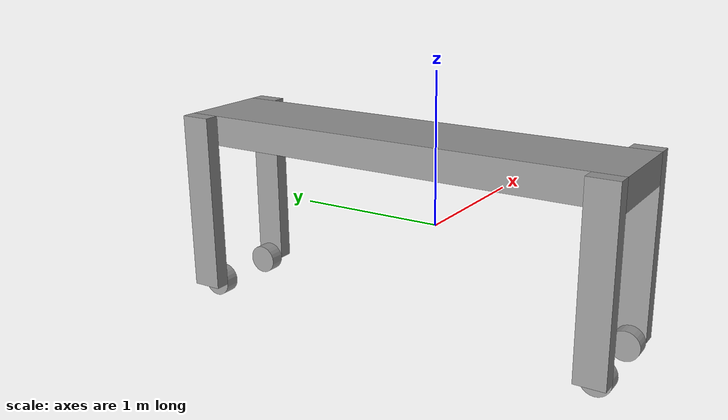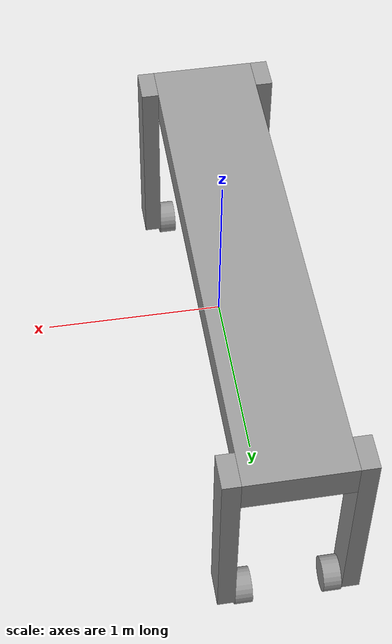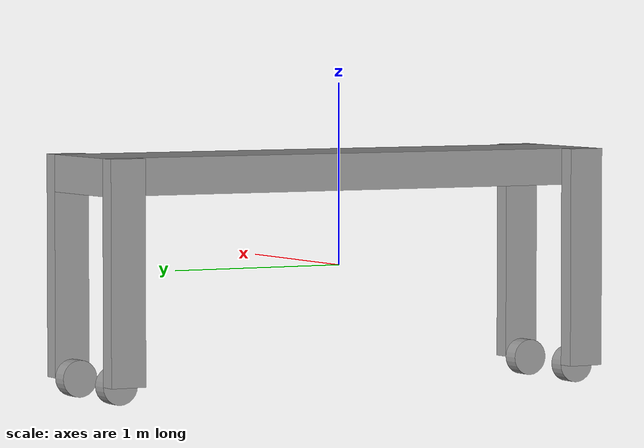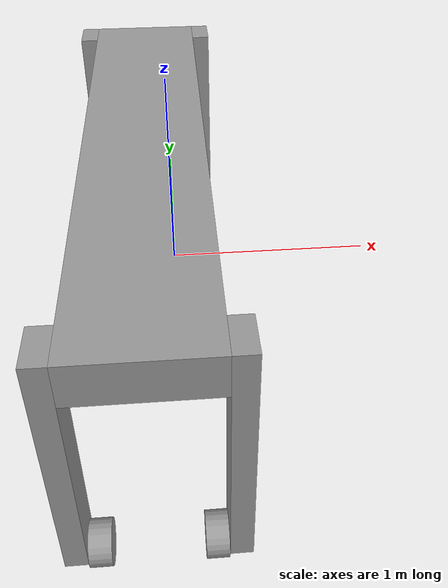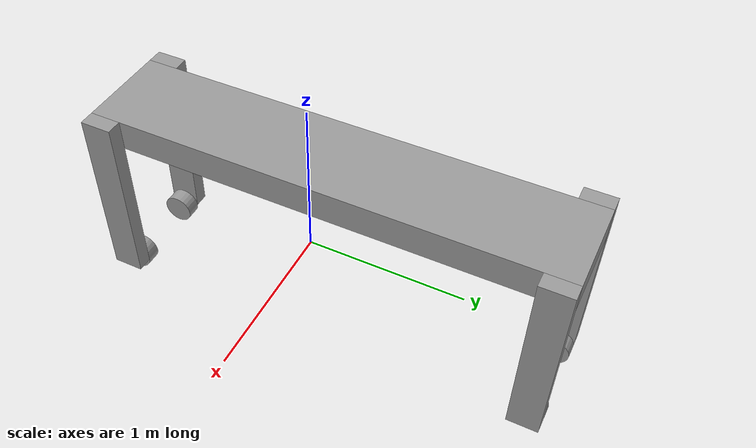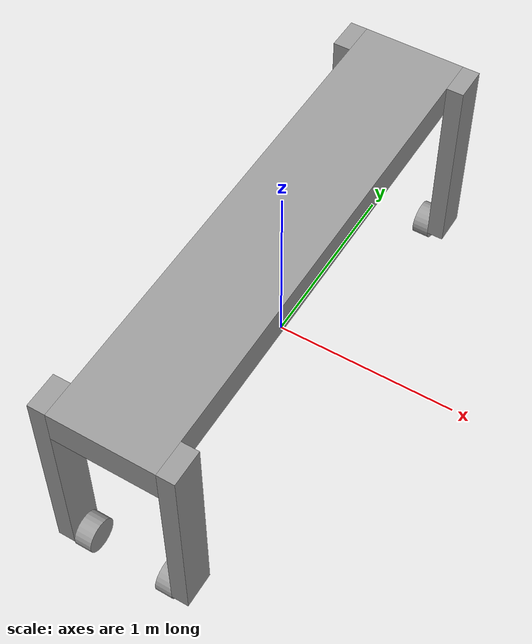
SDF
<?xml version='1.0'?>
<sdf version='1.7'>
  <model name='trolley'>
    <link name='link_0'>
      <inertial>
        <mass>1</mass>
        <inertia>
          <ixx>0.166667</ixx>
          <ixy>0</ixy>
          <ixz>0</ixz>
          <iyy>0.166667</iyy>
          <iyz>0</iyz>
          <izz>0.166667</izz>
        </inertia>
        <pose>0 0 0 0 -0 0</pose>
      </inertial>
      <pose>-0.120868 0.130124 0.533333 0 -0 0</pose>
      <gravity>1</gravity>
      <self_collide>0</self_collide>
      <kinematic>0</kinematic>
      <enable_wind>0</enable_wind>
      <visual name='visual'>
        <pose>0 0 0 0 -0 0</pose>
        <geometry>
          <box>
            <size>0.6 3 0.2</size>
          </box>
        </geometry>
        <material>
          <lighting>1</lighting>
          <script>
            <uri>file://media/materials/scripts/gazebo.material</uri>
            <name>Gazebo/Grey</name>
          </script>
          <shader type='pixel'>
            <normal_map>__default__</normal_map>
          </shader>
          <ambient>0.3 0.3 0.3 1</ambient>
          <diffuse>0.7 0.7 0.7 1</diffuse>
          <specular>0.01 0.01 0.01 1</specular>
          <emissive>0 0 0 1</emissive>
        </material>
        <transparency>0</transparency>
        <cast_shadows>1</cast_shadows>
      </visual>
      <collision name='collision'>
        <laser_retro>0</laser_retro>
        <max_contacts>10</max_contacts>
        <pose>0 0 0 0 -0 0</pose>
        <geometry>
          <box>
            <size>0.6 3 0.2</size>
          </box>
        </geometry>
        <surface>
          <friction>
            <ode>
              <mu>1</mu>
              <mu2>1</mu2>
              <fdir1>0 0 0</fdir1>
              <slip1>0</slip1>
              <slip2>0</slip2>
            </ode>
            <torsional>
              <coefficient>1</coefficient>
              <patch_radius>0</patch_radius>
              <surface_radius>0</surface_radius>
              <use_patch_radius>1</use_patch_radius>
              <ode>
                <slip>0</slip>
              </ode>
            </torsional>
          </friction>
          <bounce>
            <restitution_coefficient>0</restitution_coefficient>
            <threshold>1e+06</threshold>
          </bounce>
          <contact>
            <collide_without_contact>0</collide_without_contact>
            <collide_without_contact_bitmask>1</collide_without_contact_bitmask>
            <collide_bitmask>1</collide_bitmask>
            <ode>
              <soft_cfm>0</soft_cfm>
              <soft_erp>0.2</soft_erp>
              <kp>1e+13</kp>
              <kd>1</kd>
              <max_vel>0.01</max_vel>
              <min_depth>0</min_depth>
            </ode>
            <bullet>
              <split_impulse>1</split_impulse>
              <split_impulse_penetration_threshold>-0.01</split_impulse_penetration_threshold>
              <soft_cfm>0</soft_cfm>
              <soft_erp>0.2</soft_erp>
              <kp>1e+13</kp>
              <kd>1</kd>
            </bullet>
          </contact>
        </surface>
      </collision>
    </link>
    <link name='link_1'>
      <inertial>
        <mass>1</mass>
        <inertia>
          <ixx>0.166667</ixx>
          <ixy>0</ixy>
          <ixz>0</ixz>
          <iyy>0.166667</iyy>
          <iyz>0</iyz>
          <izz>0.166667</izz>
        </inertia>
        <pose>0 0 0 0 -0 0</pose>
      </inertial>
      <pose>0.229136 -1.26987 0.033333 0 -0 0</pose>
      <gravity>1</gravity>
      <self_collide>0</self_collide>
      <kinematic>0</kinematic>
      <enable_wind>0</enable_wind>
      <visual name='visual'>
        <pose>0 0 0 0 -0 0</pose>
        <geometry>
          <box>
            <size>0.1 0.2 1.2</size>
          </box>
        </geometry>
        <material>
          <lighting>1</lighting>
          <script>
            <uri>file://media/materials/scripts/gazebo.material</uri>
            <name>Gazebo/Grey</name>
          </script>
          <shader type='pixel'>
            <normal_map>__default__</normal_map>
          </shader>
          <ambient>0.3 0.3 0.3 1</ambient>
          <diffuse>0.7 0.7 0.7 1</diffuse>
          <specular>0.01 0.01 0.01 1</specular>
          <emissive>0 0 0 1</emissive>
        </material>
        <transparency>0</transparency>
        <cast_shadows>1</cast_shadows>
      </visual>
      <collision name='collision'>
        <laser_retro>0</laser_retro>
        <max_contacts>10</max_contacts>
        <pose>0 0 0 0 -0 0</pose>
        <geometry>
          <box>
            <size>0.1 0.2 1.2</size>
          </box>
        </geometry>
        <surface>
          <friction>
            <ode>
              <mu>1</mu>
              <mu2>1</mu2>
              <fdir1>0 0 0</fdir1>
              <slip1>0</slip1>
              <slip2>0</slip2>
            </ode>
            <torsional>
              <coefficient>1</coefficient>
              <patch_radius>0</patch_radius>
              <surface_radius>0</surface_radius>
              <use_patch_radius>1</use_patch_radius>
              <ode>
                <slip>0</slip>
              </ode>
            </torsional>
          </friction>
          <bounce>
            <restitution_coefficient>0</restitution_coefficient>
            <threshold>1e+06</threshold>
          </bounce>
          <contact>
            <collide_without_contact>0</collide_without_contact>
            <collide_without_contact_bitmask>1</collide_without_contact_bitmask>
            <collide_bitmask>1</collide_bitmask>
            <ode>
              <soft_cfm>0</soft_cfm>
              <soft_erp>0.2</soft_erp>
              <kp>1e+13</kp>
              <kd>1</kd>
              <max_vel>0.01</max_vel>
              <min_depth>0</min_depth>
            </ode>
            <bullet>
              <split_impulse>1</split_impulse>
              <split_impulse_penetration_threshold>-0.01</split_impulse_penetration_threshold>
              <soft_cfm>0</soft_cfm>
              <soft_erp>0.2</soft_erp>
              <kp>1e+13</kp>
              <kd>1</kd>
            </bullet>
          </contact>
        </surface>
      </collision>
    </link>
    <link name='link_1_clone'>
      <inertial>
        <mass>1</mass>
        <inertia>
          <ixx>0.166667</ixx>
          <ixy>0</ixy>
          <ixz>0</ixz>
          <iyy>0.166667</iyy>
          <iyz>0</iyz>
          <izz>0.166667</izz>
        </inertia>
        <pose>0 0 0 0 -0 0</pose>
      </inertial>
      <pose>-0.470868 1.53012 0.033333 0 -0 0</pose>
      <gravity>1</gravity>
      <self_collide>0</self_collide>
      <kinematic>0</kinematic>
      <enable_wind>0</enable_wind>
      <visual name='visual'>
        <pose>0 0 0 0 -0 0</pose>
        <geometry>
          <box>
            <size>0.1 0.2 1.2</size>
          </box>
        </geometry>
        <material>
          <lighting>1</lighting>
          <script>
            <uri>file://media/materials/scripts/gazebo.material</uri>
            <name>Gazebo/Grey</name>
          </script>
          <shader type='pixel'>
            <normal_map>__default__</normal_map>
          </shader>
          <ambient>0.3 0.3 0.3 1</ambient>
          <diffuse>0.7 0.7 0.7 1</diffuse>
          <specular>0.01 0.01 0.01 1</specular>
          <emissive>0 0 0 1</emissive>
        </material>
        <transparency>0</transparency>
        <cast_shadows>1</cast_shadows>
      </visual>
      <collision name='collision'>
        <laser_retro>0</laser_retro>
        <max_contacts>10</max_contacts>
        <pose>0 0 0 0 -0 0</pose>
        <geometry>
          <box>
            <size>0.1 0.2 1.2</size>
          </box>
        </geometry>
        <surface>
          <friction>
            <ode>
              <mu>1</mu>
              <mu2>1</mu2>
              <fdir1>0 0 0</fdir1>
              <slip1>0</slip1>
              <slip2>0</slip2>
            </ode>
            <torsional>
              <coefficient>1</coefficient>
              <patch_radius>0</patch_radius>
              <surface_radius>0</surface_radius>
              <use_patch_radius>1</use_patch_radius>
              <ode>
                <slip>0</slip>
              </ode>
            </torsional>
          </friction>
          <bounce>
            <restitution_coefficient>0</restitution_coefficient>
            <threshold>1e+06</threshold>
          </bounce>
          <contact>
            <collide_without_contact>0</collide_without_contact>
            <collide_without_contact_bitmask>1</collide_without_contact_bitmask>
            <collide_bitmask>1</collide_bitmask>
            <ode>
              <soft_cfm>0</soft_cfm>
              <soft_erp>0.2</soft_erp>
              <kp>1e+13</kp>
              <kd>1</kd>
              <max_vel>0.01</max_vel>
              <min_depth>0</min_depth>
            </ode>
            <bullet>
              <split_impulse>1</split_impulse>
              <split_impulse_penetration_threshold>-0.01</split_impulse_penetration_threshold>
              <soft_cfm>0</soft_cfm>
              <soft_erp>0.2</soft_erp>
              <kp>1e+13</kp>
              <kd>1</kd>
            </bullet>
          </contact>
        </surface>
      </collision>
    </link>
    <link name='link_1_clone_0'>
      <inertial>
        <mass>1</mass>
        <inertia>
          <ixx>0.166667</ixx>
          <ixy>0</ixy>
          <ixz>0</ixz>
          <iyy>0.166667</iyy>
          <iyz>0</iyz>
          <izz>0.166667</izz>
        </inertia>
        <pose>0 0 0 0 -0 0</pose>
      </inertial>
      <pose>-0.470868 -1.26987 0.033333 0 -0 0</pose>
      <gravity>1</gravity>
      <self_collide>0</self_collide>
      <kinematic>0</kinematic>
      <enable_wind>0</enable_wind>
      <visual name='visual'>
        <pose>0 0 0 0 -0 0</pose>
        <geometry>
          <box>
            <size>0.1 0.2 1.2</size>
          </box>
        </geometry>
        <material>
          <lighting>1</lighting>
          <script>
            <uri>file://media/materials/scripts/gazebo.material</uri>
            <name>Gazebo/Grey</name>
          </script>
          <shader type='pixel'>
            <normal_map>__default__</normal_map>
          </shader>
          <ambient>0.3 0.3 0.3 1</ambient>
          <diffuse>0.7 0.7 0.7 1</diffuse>
          <specular>0.01 0.01 0.01 1</specular>
          <emissive>0 0 0 1</emissive>
        </material>
        <transparency>0</transparency>
        <cast_shadows>1</cast_shadows>
      </visual>
      <collision name='collision'>
        <laser_retro>0</laser_retro>
        <max_contacts>10</max_contacts>
        <pose>0 0 0 0 -0 0</pose>
        <geometry>
          <box>
            <size>0.1 0.2 1.2</size>
          </box>
        </geometry>
        <surface>
          <friction>
            <ode>
              <mu>1</mu>
              <mu2>1</mu2>
              <fdir1>0 0 0</fdir1>
              <slip1>0</slip1>
              <slip2>0</slip2>
            </ode>
            <torsional>
              <coefficient>1</coefficient>
              <patch_radius>0</patch_radius>
              <surface_radius>0</surface_radius>
              <use_patch_radius>1</use_patch_radius>
              <ode>
                <slip>0</slip>
              </ode>
            </torsional>
          </friction>
          <bounce>
            <restitution_coefficient>0</restitution_coefficient>
            <threshold>1e+06</threshold>
          </bounce>
          <contact>
            <collide_without_contact>0</collide_without_contact>
            <collide_without_contact_bitmask>1</collide_without_contact_bitmask>
            <collide_bitmask>1</collide_bitmask>
            <ode>
              <soft_cfm>0</soft_cfm>
              <soft_erp>0.2</soft_erp>
              <kp>1e+13</kp>
              <kd>1</kd>
              <max_vel>0.01</max_vel>
              <min_depth>0</min_depth>
            </ode>
            <bullet>
              <split_impulse>1</split_impulse>
              <split_impulse_penetration_threshold>-0.01</split_impulse_penetration_threshold>
              <soft_cfm>0</soft_cfm>
              <soft_erp>0.2</soft_erp>
              <kp>1e+13</kp>
              <kd>1</kd>
            </bullet>
          </contact>
        </surface>
      </collision>
    </link>
    <link name='link_1_clone_1'>
      <inertial>
        <mass>1</mass>
        <inertia>
          <ixx>0.166667</ixx>
          <ixy>0</ixy>
          <ixz>0</ixz>
          <iyy>0.166667</iyy>
          <iyz>0</iyz>
          <izz>0.166667</izz>
        </inertia>
        <pose>0 0 0 0 -0 0</pose>
      </inertial>
      <pose>0.229136 1.53012 0.033333 0 -0 0</pose>
      <gravity>1</gravity>
      <self_collide>0</self_collide>
      <kinematic>0</kinematic>
      <enable_wind>0</enable_wind>
      <visual name='visual'>
        <pose>0 0 0 0 -0 0</pose>
        <geometry>
          <box>
            <size>0.1 0.2 1.2</size>
          </box>
        </geometry>
        <material>
          <lighting>1</lighting>
          <script>
            <uri>file://media/materials/scripts/gazebo.material</uri>
            <name>Gazebo/Grey</name>
          </script>
          <shader type='pixel'>
            <normal_map>__default__</normal_map>
          </shader>
          <ambient>0.3 0.3 0.3 1</ambient>
          <diffuse>0.7 0.7 0.7 1</diffuse>
          <specular>0.01 0.01 0.01 1</specular>
          <emissive>0 0 0 1</emissive>
        </material>
        <transparency>0</transparency>
        <cast_shadows>1</cast_shadows>
      </visual>
      <collision name='collision'>
        <laser_retro>0</laser_retro>
        <max_contacts>10</max_contacts>
        <pose>0 0 0 0 -0 0</pose>
        <geometry>
          <box>
            <size>0.1 0.2 1.2</size>
          </box>
        </geometry>
        <surface>
          <friction>
            <ode>
              <mu>1</mu>
              <mu2>1</mu2>
              <fdir1>0 0 0</fdir1>
              <slip1>0</slip1>
              <slip2>0</slip2>
            </ode>
            <torsional>
              <coefficient>1</coefficient>
              <patch_radius>0</patch_radius>
              <surface_radius>0</surface_radius>
              <use_patch_radius>1</use_patch_radius>
              <ode>
                <slip>0</slip>
              </ode>
            </torsional>
          </friction>
          <bounce>
            <restitution_coefficient>0</restitution_coefficient>
            <threshold>1e+06</threshold>
          </bounce>
          <contact>
            <collide_without_contact>0</collide_without_contact>
            <collide_without_contact_bitmask>1</collide_without_contact_bitmask>
            <collide_bitmask>1</collide_bitmask>
            <ode>
              <soft_cfm>0</soft_cfm>
              <soft_erp>0.2</soft_erp>
              <kp>1e+13</kp>
              <kd>1</kd>
              <max_vel>0.01</max_vel>
              <min_depth>0</min_depth>
            </ode>
            <bullet>
              <split_impulse>1</split_impulse>
              <split_impulse_penetration_threshold>-0.01</split_impulse_penetration_threshold>
              <soft_cfm>0</soft_cfm>
              <soft_erp>0.2</soft_erp>
              <kp>1e+13</kp>
              <kd>1</kd>
            </bullet>
          </contact>
        </surface>
      </collision>
    </link>
    <link name='link_2'>
      <inertial>
        <mass>1</mass>
        <inertia>
          <ixx>0.145833</ixx>
          <ixy>0</ixy>
          <ixz>0</ixz>
          <iyy>0.145833</iyy>
          <iyz>0</iyz>
          <izz>0.125</izz>
        </inertia>
        <pose>0 0 0 0 -0 0</pose>
      </inertial>
      <pose>-0.370868 -1.26987 -0.566667 0 1.57 0</pose>
      <gravity>1</gravity>
      <self_collide>0</self_collide>
      <kinematic>0</kinematic>
      <enable_wind>0</enable_wind>
      <visual name='visual'>
        <pose>0 0 0 0 -0 0</pose>
        <geometry>
          <cylinder>
            <radius>0.1</radius>
            <length>0.1</length>
          </cylinder>
        </geometry>
        <material>
          <lighting>1</lighting>
          <script>
            <uri>file://media/materials/scripts/gazebo.material</uri>
            <name>Gazebo/Grey</name>
          </script>
          <shader type='pixel'>
            <normal_map>__default__</normal_map>
          </shader>
          <ambient>0.3 0.3 0.3 1</ambient>
          <diffuse>0.7 0.7 0.7 1</diffuse>
          <specular>0.01 0.01 0.01 1</specular>
          <emissive>0 0 0 1</emissive>
        </material>
        <transparency>0</transparency>
        <cast_shadows>1</cast_shadows>
      </visual>
      <collision name='collision'>
        <laser_retro>0</laser_retro>
        <max_contacts>10</max_contacts>
        <pose>0 0 0 0 -0 0</pose>
        <geometry>
          <cylinder>
            <radius>0.1</radius>
            <length>0.1</length>
          </cylinder>
        </geometry>
        <surface>
          <friction>
            <ode>
              <mu>1</mu>
              <mu2>1</mu2>
              <fdir1>0 0 0</fdir1>
              <slip1>0</slip1>
              <slip2>0</slip2>
            </ode>
            <torsional>
              <coefficient>1</coefficient>
              <patch_radius>0</patch_radius>
              <surface_radius>0</surface_radius>
              <use_patch_radius>1</use_patch_radius>
              <ode>
                <slip>0</slip>
              </ode>
            </torsional>
          </friction>
          <bounce>
            <restitution_coefficient>0</restitution_coefficient>
            <threshold>1e+06</threshold>
          </bounce>
          <contact>
            <collide_without_contact>0</collide_without_contact>
            <collide_without_contact_bitmask>1</collide_without_contact_bitmask>
            <collide_bitmask>1</collide_bitmask>
            <ode>
              <soft_cfm>0</soft_cfm>
              <soft_erp>0.2</soft_erp>
              <kp>1e+13</kp>
              <kd>1</kd>
              <max_vel>0.01</max_vel>
              <min_depth>0</min_depth>
            </ode>
            <bullet>
              <split_impulse>1</split_impulse>
              <split_impulse_penetration_threshold>-0.01</split_impulse_penetration_threshold>
              <soft_cfm>0</soft_cfm>
              <soft_erp>0.2</soft_erp>
              <kp>1e+13</kp>
              <kd>1</kd>
            </bullet>
          </contact>
        </surface>
      </collision>
    </link>
    <link name='link_2_clone'>
      <inertial>
        <mass>1</mass>
        <inertia>
          <ixx>0.145833</ixx>
          <ixy>0</ixy>
          <ixz>0</ixz>
          <iyy>0.145833</iyy>
          <iyz>0</iyz>
          <izz>0.125</izz>
        </inertia>
        <pose>0 0 0 0 -0 0</pose>
      </inertial>
      <pose>-0.370868 1.53012 -0.566667 0 1.57 0</pose>
      <gravity>1</gravity>
      <self_collide>0</self_collide>
      <kinematic>0</kinematic>
      <enable_wind>0</enable_wind>
      <visual name='visual'>
        <pose>0 0 0 0 -0 0</pose>
        <geometry>
          <cylinder>
            <radius>0.1</radius>
            <length>0.1</length>
          </cylinder>
        </geometry>
        <material>
          <lighting>1</lighting>
          <script>
            <uri>file://media/materials/scripts/gazebo.material</uri>
            <name>Gazebo/Grey</name>
          </script>
          <shader type='pixel'>
            <normal_map>__default__</normal_map>
          </shader>
          <ambient>0.3 0.3 0.3 1</ambient>
          <diffuse>0.7 0.7 0.7 1</diffuse>
          <specular>0.01 0.01 0.01 1</specular>
          <emissive>0 0 0 1</emissive>
        </material>
        <transparency>0</transparency>
        <cast_shadows>1</cast_shadows>
      </visual>
      <collision name='collision'>
        <laser_retro>0</laser_retro>
        <max_contacts>10</max_contacts>
        <pose>0 0 0 0 -0 0</pose>
        <geometry>
          <cylinder>
            <radius>0.1</radius>
            <length>0.1</length>
          </cylinder>
        </geometry>
        <surface>
          <friction>
            <ode>
              <mu>1</mu>
              <mu2>1</mu2>
              <fdir1>0 0 0</fdir1>
              <slip1>0</slip1>
              <slip2>0</slip2>
            </ode>
            <torsional>
              <coefficient>1</coefficient>
              <patch_radius>0</patch_radius>
              <surface_radius>0</surface_radius>
              <use_patch_radius>1</use_patch_radius>
              <ode>
                <slip>0</slip>
              </ode>
            </torsional>
          </friction>
          <bounce>
            <restitution_coefficient>0</restitution_coefficient>
            <threshold>1e+06</threshold>
          </bounce>
          <contact>
            <collide_without_contact>0</collide_without_contact>
            <collide_without_contact_bitmask>1</collide_without_contact_bitmask>
            <collide_bitmask>1</collide_bitmask>
            <ode>
              <soft_cfm>0</soft_cfm>
              <soft_erp>0.2</soft_erp>
              <kp>1e+13</kp>
              <kd>1</kd>
              <max_vel>0.01</max_vel>
              <min_depth>0</min_depth>
            </ode>
            <bullet>
              <split_impulse>1</split_impulse>
              <split_impulse_penetration_threshold>-0.01</split_impulse_penetration_threshold>
              <soft_cfm>0</soft_cfm>
              <soft_erp>0.2</soft_erp>
              <kp>1e+13</kp>
              <kd>1</kd>
            </bullet>
          </contact>
        </surface>
      </collision>
    </link>
    <link name='link_2_clone_0'>
      <inertial>
        <mass>1</mass>
        <inertia>
          <ixx>0.145833</ixx>
          <ixy>0</ixy>
          <ixz>0</ixz>
          <iyy>0.145833</iyy>
          <iyz>0</iyz>
          <izz>0.125</izz>
        </inertia>
        <pose>0 0 0 0 -0 0</pose>
      </inertial>
      <pose>0.129132 1.53012 -0.566667 0 1.57 0</pose>
      <gravity>1</gravity>
      <self_collide>0</self_collide>
      <kinematic>0</kinematic>
      <enable_wind>0</enable_wind>
      <visual name='visual'>
        <pose>0 0 0 0 -0 0</pose>
        <geometry>
          <cylinder>
            <radius>0.1</radius>
            <length>0.1</length>
          </cylinder>
        </geometry>
        <material>
          <lighting>1</lighting>
          <script>
            <uri>file://media/materials/scripts/gazebo.material</uri>
            <name>Gazebo/Grey</name>
          </script>
          <shader type='pixel'>
            <normal_map>__default__</normal_map>
          </shader>
          <ambient>0.3 0.3 0.3 1</ambient>
          <diffuse>0.7 0.7 0.7 1</diffuse>
          <specular>0.01 0.01 0.01 1</specular>
          <emissive>0 0 0 1</emissive>
        </material>
        <transparency>0</transparency>
        <cast_shadows>1</cast_shadows>
      </visual>
      <collision name='collision'>
        <laser_retro>0</laser_retro>
        <max_contacts>10</max_contacts>
        <pose>0 0 0 0 -0 0</pose>
        <geometry>
          <cylinder>
            <radius>0.1</radius>
            <length>0.1</length>
          </cylinder>
        </geometry>
        <surface>
          <friction>
            <ode>
              <mu>1</mu>
              <mu2>1</mu2>
              <fdir1>0 0 0</fdir1>
              <slip1>0</slip1>
              <slip2>0</slip2>
            </ode>
            <torsional>
              <coefficient>1</coefficient>
              <patch_radius>0</patch_radius>
              <surface_radius>0</surface_radius>
              <use_patch_radius>1</use_patch_radius>
              <ode>
                <slip>0</slip>
              </ode>
            </torsional>
          </friction>
          <bounce>
            <restitution_coefficient>0</restitution_coefficient>
            <threshold>1e+06</threshold>
          </bounce>
          <contact>
            <collide_without_contact>0</collide_without_contact>
            <collide_without_contact_bitmask>1</collide_without_contact_bitmask>
            <collide_bitmask>1</collide_bitmask>
            <ode>
              <soft_cfm>0</soft_cfm>
              <soft_erp>0.2</soft_erp>
              <kp>1e+13</kp>
              <kd>1</kd>
              <max_vel>0.01</max_vel>
              <min_depth>0</min_depth>
            </ode>
            <bullet>
              <split_impulse>1</split_impulse>
              <split_impulse_penetration_threshold>-0.01</split_impulse_penetration_threshold>
              <soft_cfm>0</soft_cfm>
              <soft_erp>0.2</soft_erp>
              <kp>1e+13</kp>
              <kd>1</kd>
            </bullet>
          </contact>
        </surface>
      </collision>
    </link>
    <link name='link_2_clone_1'>
      <inertial>
        <mass>1</mass>
        <inertia>
          <ixx>0.145833</ixx>
          <ixy>0</ixy>
          <ixz>0</ixz>
          <iyy>0.145833</iyy>
          <iyz>0</iyz>
          <izz>0.125</izz>
        </inertia>
        <pose>0 0 0 0 -0 0</pose>
      </inertial>
      <pose>0.129136 -1.26987 -0.566667 0 1.57 0</pose>
      <gravity>1</gravity>
      <self_collide>0</self_collide>
      <kinematic>0</kinematic>
      <enable_wind>0</enable_wind>
      <visual name='visual'>
        <pose>0 0 0 0 -0 0</pose>
        <geometry>
          <cylinder>
            <radius>0.1</radius>
            <length>0.1</length>
          </cylinder>
        </geometry>
        <material>
          <lighting>1</lighting>
          <script>
            <uri>file://media/materials/scripts/gazebo.material</uri>
            <name>Gazebo/Grey</name>
          </script>
          <shader type='pixel'>
            <normal_map>__default__</normal_map>
          </shader>
          <ambient>0.3 0.3 0.3 1</ambient>
          <diffuse>0.7 0.7 0.7 1</diffuse>
          <specular>0.01 0.01 0.01 1</specular>
          <emissive>0 0 0 1</emissive>
        </material>
        <transparency>0</transparency>
        <cast_shadows>1</cast_shadows>
      </visual>
      <collision name='collision'>
        <laser_retro>0</laser_retro>
        <max_contacts>10</max_contacts>
        <pose>0 0 0 0 -0 0</pose>
        <geometry>
          <cylinder>
            <radius>0.1</radius>
            <length>0.1</length>
          </cylinder>
        </geometry>
        <surface>
          <friction>
            <ode>
              <mu>1</mu>
              <mu2>1</mu2>
              <fdir1>0 0 0</fdir1>
              <slip1>0</slip1>
              <slip2>0</slip2>
            </ode>
            <torsional>
              <coefficient>1</coefficient>
              <patch_radius>0</patch_radius>
              <surface_radius>0</surface_radius>
              <use_patch_radius>1</use_patch_radius>
              <ode>
                <slip>0</slip>
              </ode>
            </torsional>
          </friction>
          <bounce>
            <restitution_coefficient>0</restitution_coefficient>
            <threshold>1e+06</threshold>
          </bounce>
          <contact>
            <collide_without_contact>0</collide_without_contact>
            <collide_without_contact_bitmask>1</collide_without_contact_bitmask>
            <collide_bitmask>1</collide_bitmask>
            <ode>
              <soft_cfm>0</soft_cfm>
              <soft_erp>0.2</soft_erp>
              <kp>1e+13</kp>
              <kd>1</kd>
              <max_vel>0.01</max_vel>
              <min_depth>0</min_depth>
            </ode>
            <bullet>
              <split_impulse>1</split_impulse>
              <split_impulse_penetration_threshold>-0.01</split_impulse_penetration_threshold>
              <soft_cfm>0</soft_cfm>
              <soft_erp>0.2</soft_erp>
              <kp>1e+13</kp>
              <kd>1</kd>
            </bullet>
          </contact>
        </surface>
      </collision>
    </link>
    <joint name='link_0_JOINT_0' type='revolute'>
      <parent>link_0</parent>
      <child>link_1_clone</child>
      <pose>0 0 0 0 -0 0</pose>
      <axis>
        <xyz>1 0 0</xyz>
        <limit>
          <lower>-1.79769e+308</lower>
          <upper>1.79769e+308</upper>
          <effort>-1</effort>
          <velocity>-1</velocity>
        </limit>
        <dynamics>
          <spring_reference>0</spring_reference>
          <spring_stiffness>0</spring_stiffness>
          <damping>0</damping>
        </dynamics>
      </axis>
      <physics>
        <ode>
          <limit>
            <cfm>0</cfm>
            <erp>0.2</erp>
          </limit>
          <suspension>
            <cfm>0</cfm>
            <erp>0.2</erp>
          </suspension>
        </ode>
      </physics>
    </joint>
    <joint name='link_0_JOINT_1' type='revolute'>
      <parent>link_0</parent>
      <child>link_1_clone_1</child>
      <pose>0 0 0 0 -0 0</pose>
      <axis>
        <xyz>1 0 0</xyz>
        <limit>
          <lower>-1.79769e+308</lower>
          <upper>1.79769e+308</upper>
          <effort>-1</effort>
          <velocity>-1</velocity>
        </limit>
        <dynamics>
          <spring_reference>0</spring_reference>
          <spring_stiffness>0</spring_stiffness>
          <damping>0</damping>
        </dynamics>
      </axis>
      <physics>
        <ode>
          <limit>
            <cfm>0</cfm>
            <erp>0.2</erp>
          </limit>
          <suspension>
            <cfm>0</cfm>
            <erp>0.2</erp>
          </suspension>
        </ode>
      </physics>
    </joint>
    <joint name='link_0_JOINT_2' type='revolute'>
      <parent>link_0</parent>
      <child>link_1_clone_1</child>
      <pose>0 0 0 0 -0 0</pose>
      <axis>
        <xyz>1 0 0</xyz>
        <limit>
          <lower>-1.79769e+308</lower>
          <upper>1.79769e+308</upper>
          <effort>-1</effort>
          <velocity>-1</velocity>
        </limit>
        <dynamics>
          <spring_reference>0</spring_reference>
          <spring_stiffness>0</spring_stiffness>
          <damping>0</damping>
        </dynamics>
      </axis>
      <physics>
        <ode>
          <limit>
            <cfm>0</cfm>
            <erp>0.2</erp>
          </limit>
          <suspension>
            <cfm>0</cfm>
            <erp>0.2</erp>
          </suspension>
        </ode>
      </physics>
    </joint>
    <joint name='link_0_JOINT_3' type='fixed'>
      <parent>link_0</parent>
      <child>link_1_clone_1</child>
      <pose>0 0 0 -0.03 0 0</pose>
      <physics>
        <ode>
          <limit>
            <cfm>0</cfm>
            <erp>0.2</erp>
          </limit>
          <suspension>
            <cfm>0</cfm>
            <erp>0.2</erp>
          </suspension>
        </ode>
      </physics>
    </joint>
    <joint name='link_0_JOINT_4' type='fixed'>
      <parent>link_0</parent>
      <child>link_1_clone</child>
      <pose>0 0 0 0 -0.04 0</pose>
      <physics>
        <ode>
          <limit>
            <cfm>0</cfm>
            <erp>0.2</erp>
          </limit>
          <suspension>
            <cfm>0</cfm>
            <erp>0.2</erp>
          </suspension>
        </ode>
      </physics>
    </joint>
    <joint name='link_0_JOINT_5' type='fixed'>
      <parent>link_0</parent>
      <child>link_1</child>
      <pose>0 0 0 0 -0 0</pose>
      <physics>
        <ode>
          <limit>
            <cfm>0</cfm>
            <erp>0.2</erp>
          </limit>
          <suspension>
            <cfm>0</cfm>
            <erp>0.2</erp>
          </suspension>
        </ode>
      </physics>
    </joint>
    <joint name='link_0_JOINT_6' type='fixed'>
      <parent>link_0</parent>
      <child>link_1_clone_0</child>
      <pose>0 0 0 0 -0 0</pose>
      <physics>
        <ode>
          <limit>
            <cfm>0</cfm>
            <erp>0.2</erp>
          </limit>
          <suspension>
            <cfm>0</cfm>
            <erp>0.2</erp>
          </suspension>
        </ode>
      </physics>
    </joint>
    <joint name='link_1_JOINT_12' type='revolute'>
      <parent>link_1</parent>
      <child>link_2_clone_1</child>
      <pose>0 0 0 0 -0 0</pose>
      <axis>
        <xyz>1 0 0</xyz>
        <limit>
          <lower>-1.79769e+308</lower>
          <upper>1.79769e+308</upper>
          <effort>-1</effort>
          <velocity>-1</velocity>
        </limit>
        <dynamics>
          <spring_reference>0</spring_reference>
          <spring_stiffness>0</spring_stiffness>
          <damping>0</damping>
        </dynamics>
      </axis>
      <physics>
        <ode>
          <limit>
            <cfm>0</cfm>
            <erp>0.2</erp>
          </limit>
          <suspension>
            <cfm>0</cfm>
            <erp>0.2</erp>
          </suspension>
        </ode>
      </physics>
    </joint>
    <joint name='link_1_clone_0_JOINT_13' type='revolute'>
      <parent>link_1_clone_0</parent>
      <child>link_2</child>
      <pose>0 0 0 0 -0 0</pose>
      <axis>
        <xyz>1 0 0</xyz>
        <limit>
          <lower>-1.79769e+308</lower>
          <upper>1.79769e+308</upper>
          <effort>-1</effort>
          <velocity>-1</velocity>
        </limit>
        <dynamics>
          <spring_reference>0</spring_reference>
          <spring_stiffness>0</spring_stiffness>
          <damping>0</damping>
        </dynamics>
      </axis>
      <physics>
        <ode>
          <limit>
            <cfm>0</cfm>
            <erp>0.2</erp>
          </limit>
          <suspension>
            <cfm>0</cfm>
            <erp>0.2</erp>
          </suspension>
        </ode>
      </physics>
    </joint>
    <joint name='link_1_clone_1_JOINT_10' type='revolute'>
      <parent>link_1_clone_1</parent>
      <child>link_2_clone_0</child>
      <pose>0 0 0 0 -0 0</pose>
      <axis>
        <xyz>1 0 0</xyz>
        <limit>
          <lower>-1.79769e+308</lower>
          <upper>1.79769e+308</upper>
          <effort>-1</effort>
          <velocity>-1</velocity>
        </limit>
        <dynamics>
          <spring_reference>0</spring_reference>
          <spring_stiffness>0</spring_stiffness>
          <damping>0</damping>
        </dynamics>
      </axis>
      <physics>
        <ode>
          <limit>
            <cfm>0</cfm>
            <erp>0.2</erp>
          </limit>
          <suspension>
            <cfm>0</cfm>
            <erp>0.2</erp>
          </suspension>
        </ode>
      </physics>
    </joint>
    <joint name='link_1_clone_1_JOINT_11' type='revolute'>
      <parent>link_1_clone_1</parent>
      <child>link_2_clone_0</child>
      <pose>0 0 0 0 -0 0</pose>
      <axis>
        <xyz>1 0 0</xyz>
        <limit>
          <lower>-1.79769e+308</lower>
          <upper>1.79769e+308</upper>
          <effort>-1</effort>
          <velocity>-1</velocity>
        </limit>
        <dynamics>
          <spring_reference>0</spring_reference>
          <spring_stiffness>0</spring_stiffness>
          <damping>0</damping>
        </dynamics>
      </axis>
      <physics>
        <ode>
          <limit>
            <cfm>0</cfm>
            <erp>0.2</erp>
          </limit>
          <suspension>
            <cfm>0</cfm>
            <erp>0.2</erp>
          </suspension>
        </ode>
      </physics>
    </joint>
    <joint name='link_1_clone_1_JOINT_7' type='revolute'>
      <parent>link_1_clone_1</parent>
      <child>link_2_clone_0</child>
      <pose>0 0 0 0 -0 0</pose>
      <axis>
        <xyz>1 0 0</xyz>
        <limit>
          <lower>-1.79769e+308</lower>
          <upper>1.79769e+308</upper>
          <effort>-1</effort>
          <velocity>-1</velocity>
        </limit>
        <dynamics>
          <spring_reference>0</spring_reference>
          <spring_stiffness>0</spring_stiffness>
          <damping>0</damping>
        </dynamics>
      </axis>
      <physics>
        <ode>
          <limit>
            <cfm>0</cfm>
            <erp>0.2</erp>
          </limit>
          <suspension>
            <cfm>0</cfm>
            <erp>0.2</erp>
          </suspension>
        </ode>
      </physics>
    </joint>
    <joint name='link_1_clone_1_JOINT_9' type='revolute'>
      <parent>link_1_clone_1</parent>
      <child>link_2_clone_0</child>
      <pose>0 0 0 0 -0 0</pose>
      <axis>
        <xyz>1 0 0</xyz>
        <limit>
          <lower>-1.79769e+308</lower>
          <upper>1.79769e+308</upper>
          <effort>-1</effort>
          <velocity>-1</velocity>
        </limit>
        <dynamics>
          <spring_reference>0</spring_reference>
          <spring_stiffness>0</spring_stiffness>
          <damping>0</damping>
        </dynamics>
      </axis>
      <physics>
        <ode>
          <limit>
            <cfm>0</cfm>
            <erp>0.2</erp>
          </limit>
          <suspension>
            <cfm>0</cfm>
            <erp>0.2</erp>
          </suspension>
        </ode>
      </physics>
    </joint>
    <joint name='link_1_clone_JOINT_14' type='revolute'>
      <parent>link_1_clone</parent>
      <child>link_2_clone</child>
      <pose>0 0 0 0 -0 0</pose>
      <axis>
        <xyz>1 0 0</xyz>
        <limit>
          <lower>-1.79769e+308</lower>
          <upper>1.79769e+308</upper>
          <effort>-1</effort>
          <velocity>-1</velocity>
        </limit>
        <dynamics>
          <spring_reference>0</spring_reference>
          <spring_stiffness>0</spring_stiffness>
          <damping>0</damping>
        </dynamics>
      </axis>
      <physics>
        <ode>
          <limit>
            <cfm>0</cfm>
            <erp>0.2</erp>
          </limit>
          <suspension>
            <cfm>0</cfm>
            <erp>0.2</erp>
          </suspension>
        </ode>
      </physics>
    </joint>
    <static>0</static>
    <allow_auto_disable>1</allow_auto_disable>
  </model>
</sdf>
